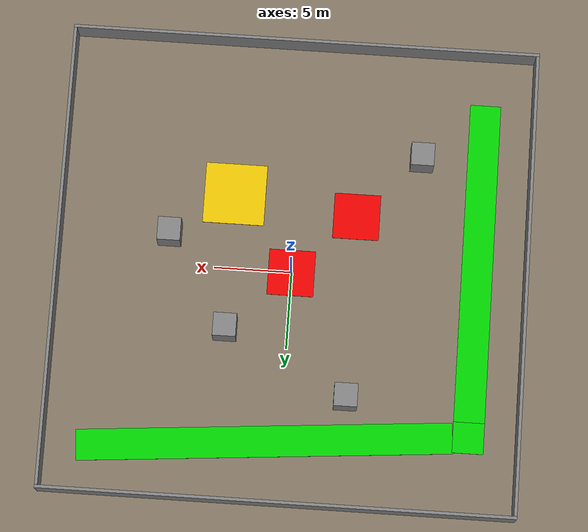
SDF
<?xml version="1.0"?>
<sdf version="1.6">
  <world name="military_sector">

    <scene>
      <ambient>0.8 0.8 0.8 1.0</ambient>
      <shadows>false</shadows>
    </scene>

    <light type="directional" name="sun">
      <cast_shadows>false</cast_shadows>
      <pose>0 0 50 0 0 0</pose>
      <diffuse>1.0 1.0 1.0 1.0</diffuse>
      <specular>0.0 0.0 0.0 1.0</specular>
      <attenuation>
        <range>1000</range>
        <constant>1.0</constant>
        <linear>0.0</linear>
        <quadratic>0.0</quadratic>
      </attenuation>
      <direction>0.0 0.0 -1.0</direction>
    </light>

    <model name="ground_plane">
      <static>true</static>
      <link name="link">
        <collision name="collision">
          <geometry>
            <plane>
              <normal>0 0 1</normal>
              <size>40 40</size>
            </plane>
          </geometry>
        </collision>
        <visual name="visual">
          <cast_shadows>false</cast_shadows>
          <geometry>
            <plane>
              <normal>0 0 1</normal>
              <size>40 40</size>
            </plane>
          </geometry>
          <material>
            <ambient>0.50 0.45 0.38 1.0</ambient>
            <diffuse>0.50 0.45 0.38 1.0</diffuse>
            <specular>0.0 0.0 0.0 1.0</specular>
            <emissive>0.0 0.0 0.0 1.0</emissive>
          </material>
        </visual>
      </link>
    </model>

    <model name="wall_north">
      <static>true</static>
      <pose>0 15.1 1.0 0 0 0</pose>
      <link name="link">
        <collision name="collision">
          <geometry>
            <box><size>30.4 0.2 2.0</size></box>
          </geometry>
        </collision>
        <visual name="visual">
          <geometry>
            <box><size>30.4 0.2 2.0</size></box>
          </geometry>
          <material>
            <ambient>0.5 0.5 0.5 1.0</ambient>
            <diffuse>0.5 0.5 0.5 1.0</diffuse>
            <specular>0.0 0.0 0.0 1.0</specular>
            <emissive>0.0 0.0 0.0 1.0</emissive>
          </material>
        </visual>
      </link>
    </model>

    <model name="wall_south">
      <static>true</static>
      <pose>0 -15.1 1.0 0 0 0</pose>
      <link name="link">
        <collision name="collision">
          <geometry>
            <box><size>30.4 0.2 2.0</size></box>
          </geometry>
        </collision>
        <visual name="visual">
          <geometry>
            <box><size>30.4 0.2 2.0</size></box>
          </geometry>
          <material>
            <ambient>0.5 0.5 0.5 1.0</ambient>
            <diffuse>0.5 0.5 0.5 1.0</diffuse>
            <specular>0.0 0.0 0.0 1.0</specular>
            <emissive>0.0 0.0 0.0 1.0</emissive>
          </material>
        </visual>
      </link>
    </model>

    <model name="wall_east">
      <static>true</static>
      <pose>15.1 0 1.0 0 0 0</pose>
      <link name="link">
        <collision name="collision">
          <geometry>
            <box><size>0.2 30.0 2.0</size></box>
          </geometry>
        </collision>
        <visual name="visual">
          <geometry>
            <box><size>0.2 30.0 2.0</size></box>
          </geometry>
          <material>
            <ambient>0.5 0.5 0.5 1.0</ambient>
            <diffuse>0.5 0.5 0.5 1.0</diffuse>
            <specular>0.0 0.0 0.0 1.0</specular>
            <emissive>0.0 0.0 0.0 1.0</emissive>
          </material>
        </visual>
      </link>
    </model>

    <model name="wall_west">
      <static>true</static>
      <pose>-15.1 0 1.0 0 0 0</pose>
      <link name="link">
        <collision name="collision">
          <geometry>
            <box><size>0.2 30.0 2.0</size></box>
          </geometry>
        </collision>
        <visual name="visual">
          <geometry>
            <box><size>0.2 30.0 2.0</size></box>
          </geometry>
          <material>
            <ambient>0.5 0.5 0.5 1.0</ambient>
            <diffuse>0.5 0.5 0.5 1.0</diffuse>
            <specular>0.0 0.0 0.0 1.0</specular>
            <emissive>0.0 0.0 0.0 1.0</emissive>
          </material>
        </visual>
      </link>
    </model>

    <model name="block_1">
      <static>true</static>
      <pose>-8 -8 1.0 0 0 0</pose>
      <link name="link">
        <collision name="collision">
          <geometry>
            <box><size>1.5 1.5 2.0</size></box>
          </geometry>
        </collision>
        <visual name="visual">
          <geometry>
            <box><size>1.5 1.5 2.0</size></box>
          </geometry>
          <material>
            <ambient>0.5 0.5 0.5 1.0</ambient>
            <diffuse>0.5 0.5 0.5 1.0</diffuse>
            <specular>0.0 0.0 0.0 1.0</specular>
            <emissive>0.0 0.0 0.0 1.0</emissive>
          </material>
        </visual>
      </link>
    </model>

    <model name="block_2">
      <static>true</static>
      <pose>4 4 1.0 0 0 0</pose>
      <link name="link">
        <collision name="collision">
          <geometry>
            <box><size>1.5 1.5 2.0</size></box>
          </geometry>
        </collision>
        <visual name="visual">
          <geometry>
            <box><size>1.5 1.5 2.0</size></box>
          </geometry>
          <material>
            <ambient>0.5 0.5 0.5 1.0</ambient>
            <diffuse>0.5 0.5 0.5 1.0</diffuse>
            <specular>0.0 0.0 0.0 1.0</specular>
            <emissive>0.0 0.0 0.0 1.0</emissive>
          </material>
        </visual>
      </link>
    </model>

    <model name="block_3">
      <static>true</static>
      <pose>8 -2 1.0 0 0 0</pose>
      <link name="link">
        <collision name="collision">
          <geometry>
            <box><size>1.5 1.5 2.0</size></box>
          </geometry>
        </collision>
        <visual name="visual">
          <geometry>
            <box><size>1.5 1.5 2.0</size></box>
          </geometry>
          <material>
            <ambient>0.5 0.5 0.5 1.0</ambient>
            <diffuse>0.5 0.5 0.5 1.0</diffuse>
            <specular>0.0 0.0 0.0 1.0</specular>
            <emissive>0.0 0.0 0.0 1.0</emissive>
          </material>
        </visual>
      </link>
    </model>

    <model name="block_4">
      <static>true</static>
      <pose>-4 8 1.0 0 0 0</pose>
      <link name="link">
        <collision name="collision">
          <geometry>
            <box><size>1.5 1.5 2.0</size></box>
          </geometry>
        </collision>
        <visual name="visual">
          <geometry>
            <box><size>1.5 1.5 2.0</size></box>
          </geometry>
          <material>
            <ambient>0.5 0.5 0.5 1.0</ambient>
            <diffuse>0.5 0.5 0.5 1.0</diffuse>
            <specular>0.0 0.0 0.0 1.0</specular>
            <emissive>0.0 0.0 0.0 1.0</emissive>
          </material>
        </visual>
      </link>
    </model>

    <model name="mine_1">
      <static>true</static>
      <pose>0 0 0.01 0 0 0</pose>
      <link name="link">
        <visual name="visual">
          <geometry>
            <box><size>3.0 3.0 0.02</size></box>
          </geometry>
          <material>
            <ambient>0.9 0.0 0.0 1.0</ambient>
            <diffuse>0.9 0.0 0.0 1.0</diffuse>
            <specular>0.0 0.0 0.0 1.0</specular>
            <emissive>0.0 0.0 0.0 1.0</emissive>
          </material>
        </visual>
      </link>
    </model>

    <model name="mine_2">
      <static>true</static>
      <pose>-4 -4 0.01 0 0 0</pose>
      <link name="link">
        <visual name="visual">
          <geometry>
            <box><size>3.0 3.0 0.02</size></box>
          </geometry>
          <material>
            <ambient>0.9 0.0 0.0 1.0</ambient>
            <diffuse>0.9 0.0 0.0 1.0</diffuse>
            <specular>0.0 0.0 0.0 1.0</specular>
            <emissive>0.0 0.0 0.0 1.0</emissive>
          </material>
        </visual>
      </link>
    </model>

    <model name="mud_1">
      <static>true</static>
      <pose>4 -5 0.01 0 0 0</pose>
      <link name="link">
        <visual name="visual">
          <geometry>
            <box><size>4.0 4.0 0.02</size></box>
          </geometry>
          <material>
            <ambient>0.9 0.75 0.0 1.0</ambient>
            <diffuse>0.9 0.75 0.0 1.0</diffuse>
            <specular>0.0 0.0 0.0 1.0</specular>
            <emissive>0.0 0.0 0.0 1.0</emissive>
          </material>
        </visual>
      </link>
    </model>

    <model name="road_vertical">
      <static>true</static>
      <pose>-12 -1 0.01 0 0 0</pose>
      <link name="link">
        <visual name="visual">
          <geometry>
            <box><size>2.0 22.0 0.02</size></box>
          </geometry>
          <material>
            <ambient>0.0 0.8 0.0 1.0</ambient>
            <diffuse>0.0 0.8 0.0 1.0</diffuse>
            <specular>0.0 0.0 0.0 1.0</specular>
            <emissive>0.0 0.0 0.0 1.0</emissive>
          </material>
        </visual>
      </link>
    </model>

    <model name="road_corner">
      <static>true</static>
      <pose>-12 10 0.01 0 0 0</pose>
      <link name="link">
        <visual name="visual">
          <geometry>
            <box><size>2.0 2.0 0.02</size></box>
          </geometry>
          <material>
            <ambient>0.0 0.8 0.0 1.0</ambient>
            <diffuse>0.0 0.8 0.0 1.0</diffuse>
            <specular>0.0 0.0 0.0 1.0</specular>
            <emissive>0.0 0.0 0.0 1.0</emissive>
          </material>
        </visual>
      </link>
    </model>

    <model name="road_slanted">
      <static>true</static>
      <pose>1 11.0833 0.01 0 0 0.0831</pose>
      <link name="link">
        <visual name="visual">
          <geometry>
            <box><size>24.083 2.0 0.02</size></box>
          </geometry>
          <material>
            <ambient>0.0 0.8 0.0 1.0</ambient>
            <diffuse>0.0 0.8 0.0 1.0</diffuse>
            <specular>0.0 0.0 0.0 1.0</specular>
            <emissive>0.0 0.0 0.0 1.0</emissive>
          </material>
        </visual>
      </link>
    </model>

  </world>
</sdf>
